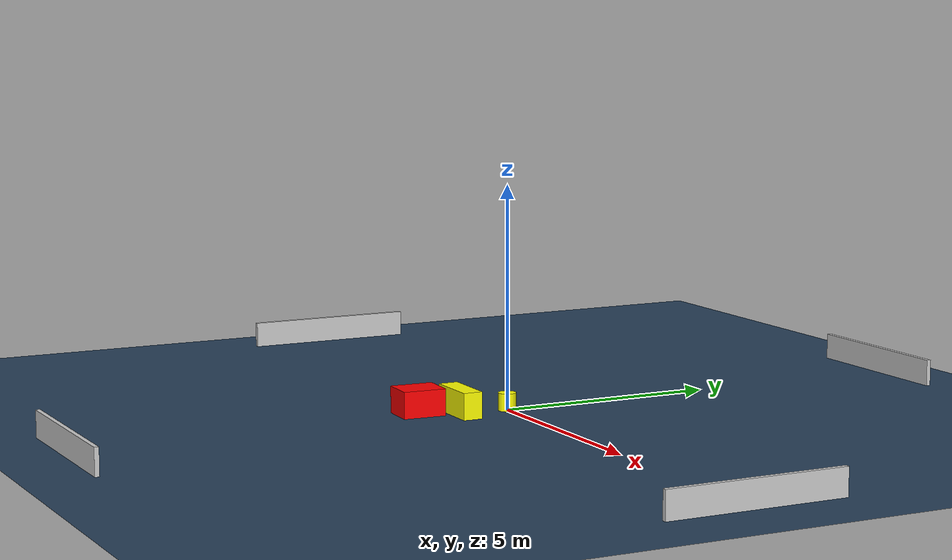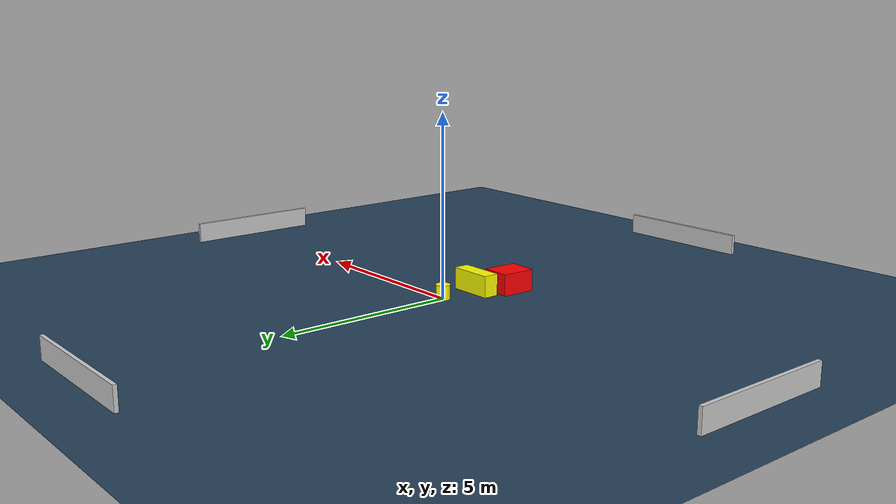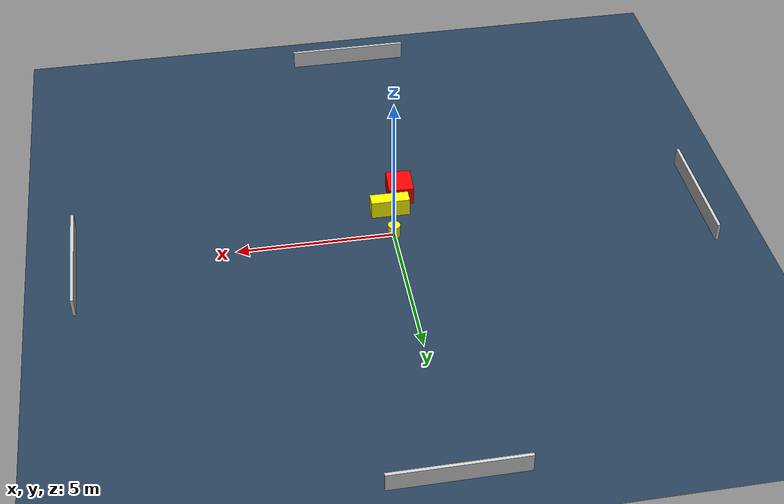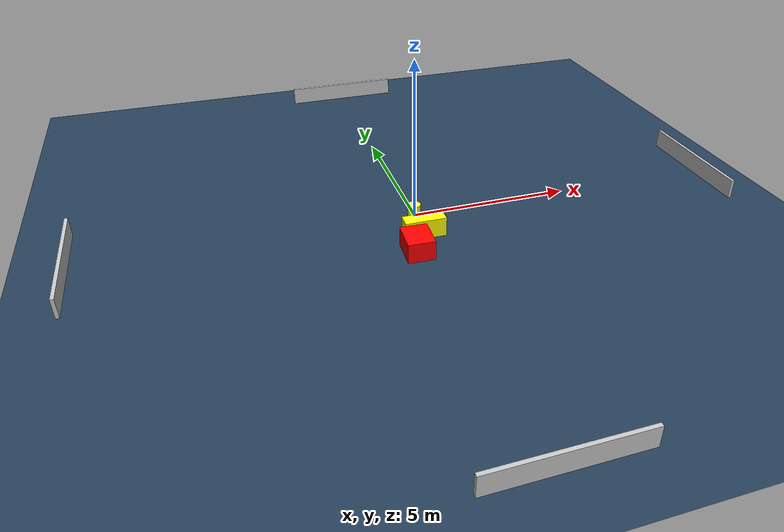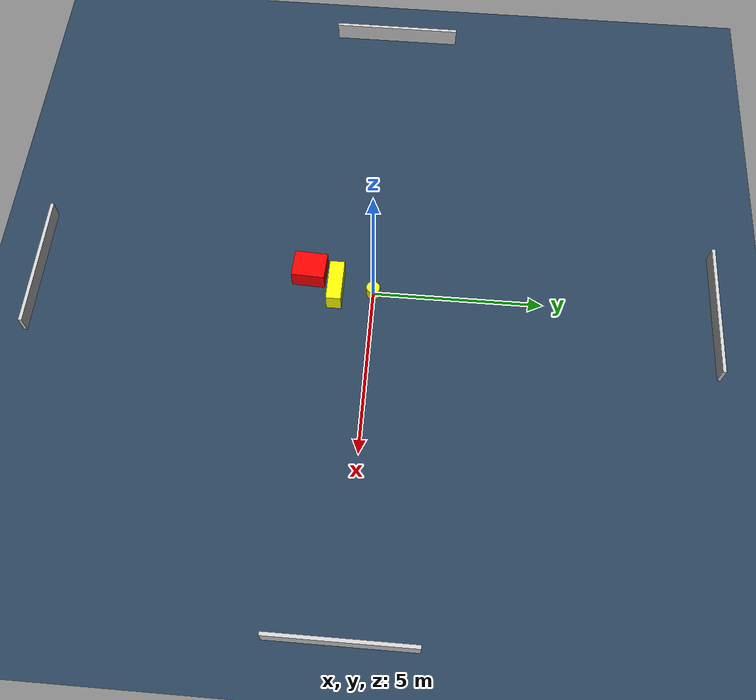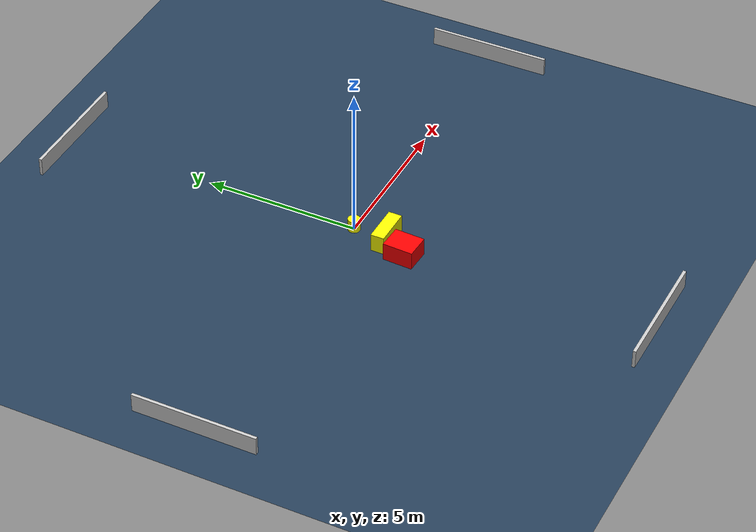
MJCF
<?xml version="1.0" ?>
<mujoco model="generated_environment">
  <option timestep="0.01" integrator="RK4" cone="elliptic"/>
  <default>
    <geom density="1"/>
  </default>
  <asset>
    <texture builtin="gradient" height="3072" name="skybox" rgb1="0.3 0.5 0.7" rgb2="0 0 0" type="skybox" width="512"/>
    <texture builtin="checker" height="300" name="groundplane" rgb1="0.2 0.3 0.4" rgb2="0.1 0.2 0.3" type="2d" width="300"/>
    <material name="groundplane" reflectance="0.2" texrepeat="5 5" texture="groundplane"/>
  </asset>
  <worldbody>
    <light dir="0 0 -1" directional="true" pos="0 0 1.5"/>
    <geom condim="3" friction="0.5 0.005 0.001" material="groundplane" name="floor" pos="0 0 0" size="0 0 0.05" type="plane"/>
    <body name="walls">
      <geom name="wall_1" condim="4" pos="-10.0 0.0 0.3" rgba="0.800000011920929 0.800000011920929 0.800000011920929 1.0" size="0.05 2.0 0.3" type="box"/>
      <geom name="wall_2" condim="4" pos="10.0 0.0 0.3" rgba="0.800000011920929 0.800000011920929 0.800000011920929 1.0" size="0.05 2.0 0.3" type="box"/>
      <geom name="wall_3" condim="4" pos="0.0 -10.0 0.3" rgba="0.800000011920929 0.800000011920929 0.800000011920929 1.0" size="2.0 0.05 0.3" type="box"/>
      <geom name="wall_4" condim="4" pos="0.0 10.0 0.3" rgba="0.800000011920929 0.800000011920929 0.800000011920929 1.0" size="2.0 0.05 0.3" type="box"/>
    </body>
    <body name="robot">
      <joint name="joint_x" type="slide" pos="0 0 0" axis="1 0 0"/>
      <joint name="joint_y" type="slide" pos="0 0 0" axis="0 1 0"/>
      <geom name="robot" type="cylinder" pos="0.0 0.0 0.2" size="0.2 0.2 0.0" mass="5.0" friction="1.0 0.005 0.0001" condim="4" rgba="1.0 1.0 0.0 1.0"/>
    </body>
    <body name="obstacle_1_movable">
      <geom name="obstacle_1_movable" condim="4" pos="-0.05481200869319936 -1.1207050166933563 0.3" euler="0 0 179.57514053270597" friction="0.0 0.005 0.001" rgba="1.0 1.0 0.0 1.0" size="0.6233325960929077 0.21939236472379797 0.3" type="box" mass="0.1"/>
      <joint type="free"/>
    </body>
    <body name="obstacle_2_static">
      <geom name="obstacle_2_static" condim="4" pos="-0.5145289465813664 -1.9284798519289954 0.3" euler="0 0 357.2971053668879" friction="0.0 0.005 0.001" rgba="1.0 0.0 0.0 1.0" size="0.40272553612278383 0.48809745452690945 0.3" type="box"/>
    </body>
  </worldbody>
  <actuator>
    <motor name="actuator_x" joint="joint_x" gear="1" ctrlrange="-1 1"/>
    <motor name="actuator_y" joint="joint_y" gear="1" ctrlrange="-1 1"/>
  </actuator>
</mujoco>
